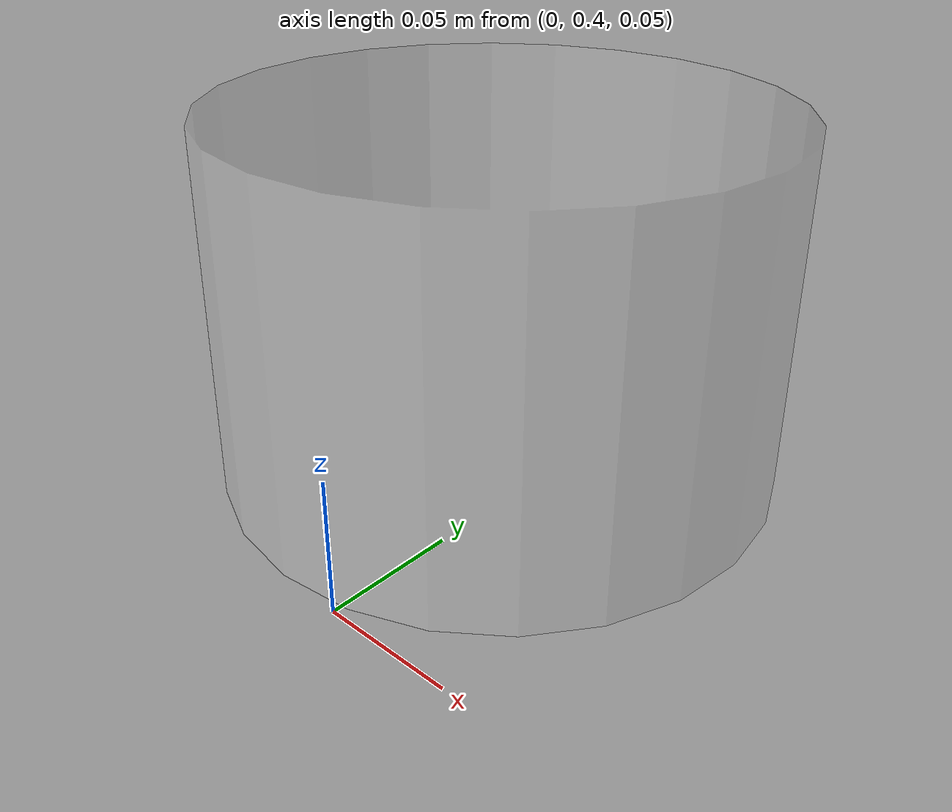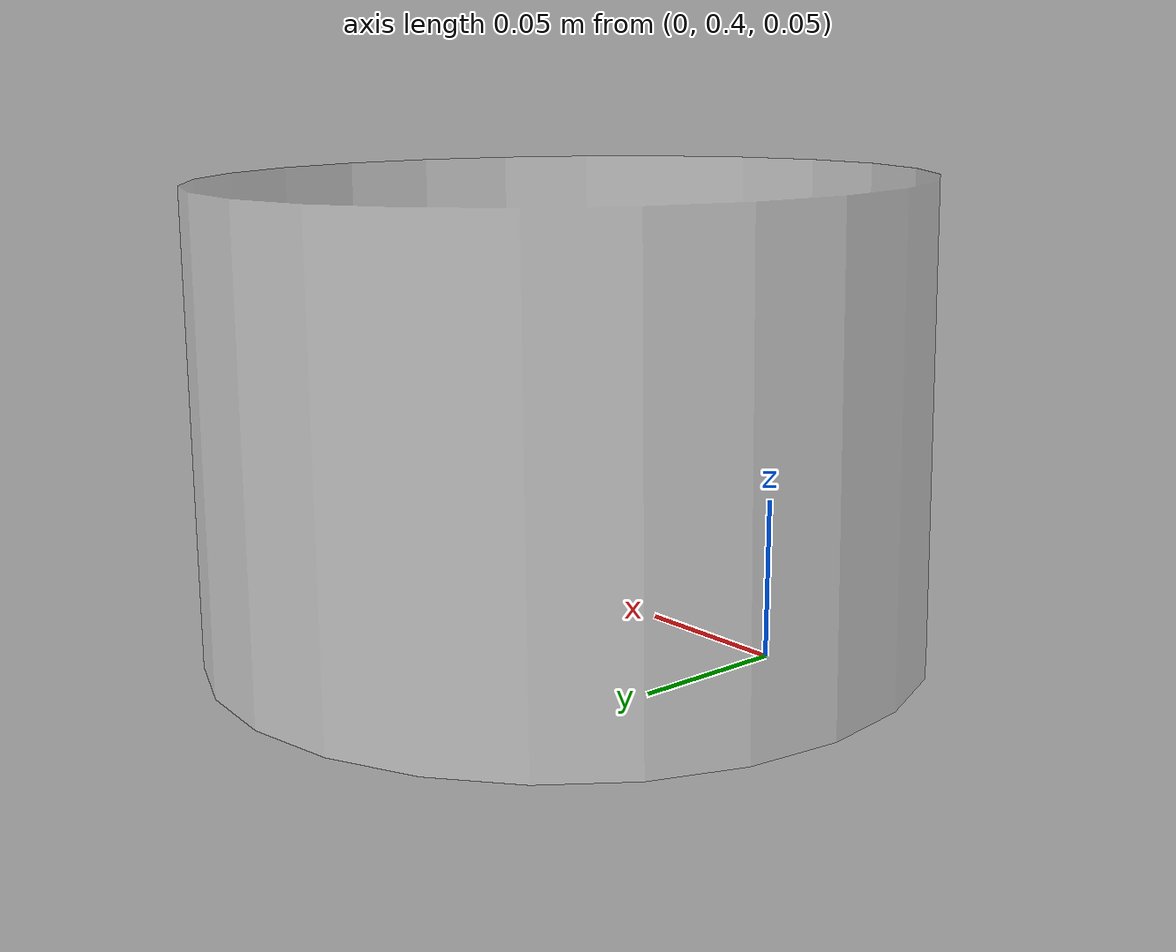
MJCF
<mujoco model="original-13">
  <default>
    <default class="visual">
      <geom group="2" type="mesh" contype="0" conaffinity="0"/>
    </default>
    <default class="collision">
      <geom group="3" type="mesh"/>
    </default>
  </default>
  <asset>
    <material name="material_0_0" specular="0.06666666666666667" shininess="0.03" rgba="0.8627450980392157 0.8627450980392157 0.8627450980392157 0.5019608"/>
    <mesh file="original-13.obj"/>
  </asset>
  <worldbody>
    <body name="original-13">
      <geom material="material_0_0" mesh="original-13" class="visual"/>
      <geom mesh="original-13" class="collision"/>
    </body>
  </worldbody>
</mujoco>
